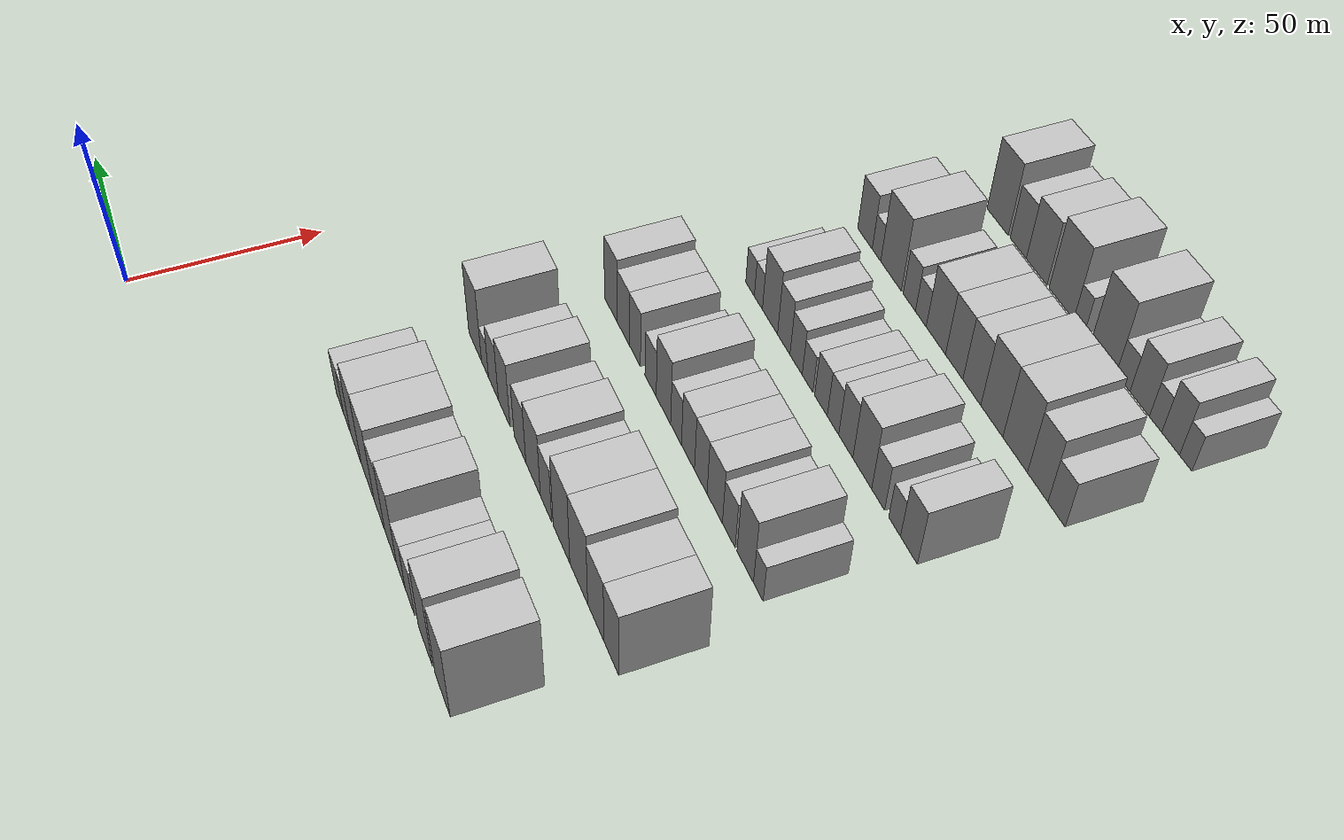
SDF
<sdf version="1.6">
 <world name="default">
  <model name="building_46">
   <static>1</static>
   <pose>50.0000 -142.6993 0 0.000000 0.000000 0.000000</pose>
   <link name="link">
    <pose>0 0 12.00 0 0 0</pose>
    <collision name="collision"><geometry><box><size>20.0000 10.8286 24.0000</size></box></geometry></collision>
    <visual name="visual">
     <cast_shadows>0</cast_shadows>
     <geometry><box><size>20.0000 10.8286 24.0000</size></box></geometry>
     <material>
      <script>
       <uri>model://HANNAS_wall/materials/scripts</uri>
       <uri>model://HANNAS_wall/materials/textures</uri>
       <name>vrc/HANNAS_wall</name>
      </script>
     </material>
    </visual>
   </link>
  </model>
  <model name="building_47">
   <static>1</static>
   <pose>50.0000 -130.2435 0 0.000000 0.000000 0.000000</pose>
   <link name="link">
    <pose>0 0 12.00 0 0 0</pose>
    <collision name="collision"><geometry><box><size>20.0000 10.0830 24.0000</size></box></geometry></collision>
    <visual name="visual">
     <cast_shadows>0</cast_shadows>
     <geometry><box><size>20.0000 10.0830 24.0000</size></box></geometry>
     <material>
      <script>
       <uri>model://HANNAS_wall/materials/scripts</uri>
       <uri>model://HANNAS_wall/materials/textures</uri>
       <name>vrc/HANNAS_wall</name>
      </script>
     </material>
    </visual>
   </link>
  </model>
  <model name="building_48">
   <static>1</static>
   <pose>50.0000 -118.5412 0 0.000000 0.000000 0.000000</pose>
   <link name="link">
    <pose>0 0 7.50 0 0 0</pose>
    <collision name="collision"><geometry><box><size>20.0000 7.3214 15.0000</size></box></geometry></collision>
    <visual name="visual">
     <cast_shadows>0</cast_shadows>
     <geometry><box><size>20.0000 7.3214 15.0000</size></box></geometry>
     <material>
      <script>
       <uri>model://HANNAS_wall/materials/scripts</uri>
       <uri>model://HANNAS_wall/materials/textures</uri>
       <name>vrc/HANNAS_wall</name>
      </script>
     </material>
    </visual>
   </link>
  </model>
  <model name="building_49">
   <static>1</static>
   <pose>50.0000 -111.5562 0 0.000000 0.000000 0.000000</pose>
   <link name="link">
    <pose>0 0 7.50 0 0 0</pose>
    <collision name="collision"><geometry><box><size>20.0000 6.6487 15.0000</size></box></geometry></collision>
    <visual name="visual">
     <cast_shadows>0</cast_shadows>
     <geometry><box><size>20.0000 6.6487 15.0000</size></box></geometry>
     <material>
      <script>
       <uri>model://HANNAS_wall/materials/scripts</uri>
       <uri>model://HANNAS_wall/materials/textures</uri>
       <name>vrc/HANNAS_wall</name>
      </script>
     </material>
    </visual>
   </link>
  </model>
  <model name="building_50">
   <static>1</static>
   <pose>50.0000 -103.3885 0 0.000000 0.000000 0.000000</pose>
   <link name="link">
    <pose>0 0 12.00 0 0 0</pose>
    <collision name="collision"><geometry><box><size>20.0000 9.6866 24.0000</size></box></geometry></collision>
    <visual name="visual">
     <cast_shadows>0</cast_shadows>
     <geometry><box><size>20.0000 9.6866 24.0000</size></box></geometry>
     <material>
      <script>
       <uri>model://HANNAS_wall/materials/scripts</uri>
       <uri>model://HANNAS_wall/materials/textures</uri>
       <name>vrc/HANNAS_wall</name>
      </script>
     </material>
    </visual>
   </link>
  </model>
  <model name="building_51">
   <static>1</static>
   <pose>50.0000 -94.0800 0 0.000000 0.000000 0.000000</pose>
   <link name="link">
    <pose>0 0 10.50 0 0 0</pose>
    <collision name="collision"><geometry><box><size>20.0000 8.9304 21.0000</size></box></geometry></collision>
    <visual name="visual">
     <cast_shadows>0</cast_shadows>
     <geometry><box><size>20.0000 8.9304 21.0000</size></box></geometry>
     <material>
      <script>
       <uri>model://HANNAS_wall/materials/scripts</uri>
       <uri>model://HANNAS_wall/materials/textures</uri>
       <name>vrc/HANNAS_wall</name>
      </script>
     </material>
    </visual>
   </link>
  </model>
  <model name="building_52">
   <static>1</static>
   <pose>50.0000 -84.0661 0 0.000000 0.000000 0.000000</pose>
   <link name="link">
    <pose>0 0 12.00 0 0 0</pose>
    <collision name="collision"><geometry><box><size>20.0000 11.0974 24.0000</size></box></geometry></collision>
    <visual name="visual">
     <cast_shadows>0</cast_shadows>
     <geometry><box><size>20.0000 11.0974 24.0000</size></box></geometry>
     <material>
      <script>
       <uri>model://HANNAS_wall/materials/scripts</uri>
       <uri>model://HANNAS_wall/materials/textures</uri>
       <name>vrc/HANNAS_wall</name>
      </script>
     </material>
    </visual>
   </link>
  </model>
  <model name="building_53">
   <static>1</static>
   <pose>50.0000 -73.6594 0 0.000000 0.000000 0.000000</pose>
   <link name="link">
    <pose>0 0 12.00 0 0 0</pose>
    <collision name="collision"><geometry><box><size>20.0000 9.7160 24.0000</size></box></geometry></collision>
    <visual name="visual">
     <cast_shadows>0</cast_shadows>
     <geometry><box><size>20.0000 9.7160 24.0000</size></box></geometry>
     <material>
      <script>
       <uri>model://HANNAS_wall/materials/scripts</uri>
       <uri>model://HANNAS_wall/materials/textures</uri>
       <name>vrc/HANNAS_wall</name>
      </script>
     </material>
    </visual>
   </link>
  </model>
  <model name="building_54">
   <static>1</static>
   <pose>50.0000 -65.4729 0 0.000000 0.000000 0.000000</pose>
   <link name="link">
    <pose>0 0 7.50 0 0 0</pose>
    <collision name="collision"><geometry><box><size>20.0000 6.6570 15.0000</size></box></geometry></collision>
    <visual name="visual">
     <cast_shadows>0</cast_shadows>
     <geometry><box><size>20.0000 6.6570 15.0000</size></box></geometry>
     <material>
      <script>
       <uri>model://HANNAS_wall/materials/scripts</uri>
       <uri>model://HANNAS_wall/materials/textures</uri>
       <name>vrc/HANNAS_wall</name>
      </script>
     </material>
    </visual>
   </link>
  </model>
  <model name="building_55">
   <static>1</static>
   <pose>50.0000 -58.6937 0 0.000000 0.000000 0.000000</pose>
   <link name="link">
    <pose>0 0 7.50 0 0 0</pose>
    <collision name="collision"><geometry><box><size>20.0000 6.9015 15.0000</size></box></geometry></collision>
    <visual name="visual">
     <cast_shadows>0</cast_shadows>
     <geometry><box><size>20.0000 6.9015 15.0000</size></box></geometry>
     <material>
      <script>
       <uri>model://HANNAS_wall/materials/scripts</uri>
       <uri>model://HANNAS_wall/materials/textures</uri>
       <name>vrc/HANNAS_wall</name>
      </script>
     </material>
    </visual>
   </link>
  </model>
  <model name="building_178">
   <static>1</static>
   <pose>85.0000 -146.7550 0 0.000000 0.000000 0.000000</pose>
   <link name="link">
    <pose>0 0 10.50 0 0 0</pose>
    <collision name="collision"><geometry><box><size>20.0000 8.6500 21.0000</size></box></geometry></collision>
    <visual name="visual">
     <cast_shadows>0</cast_shadows>
     <geometry><box><size>20.0000 8.6500 21.0000</size></box></geometry>
     <material>
      <script>
       <uri>model://HANNAS_wall/materials/scripts</uri>
       <uri>model://HANNAS_wall/materials/textures</uri>
       <name>vrc/HANNAS_wall</name>
      </script>
     </material>
    </visual>
   </link>
  </model>
  <model name="building_179">
   <static>1</static>
   <pose>85.0000 -137.4361 0 0.000000 0.000000 0.000000</pose>
   <link name="link">
    <pose>0 0 10.50 0 0 0</pose>
    <collision name="collision"><geometry><box><size>20.0000 9.9879 21.0000</size></box></geometry></collision>
    <visual name="visual">
     <cast_shadows>0</cast_shadows>
     <geometry><box><size>20.0000 9.9879 21.0000</size></box></geometry>
     <material>
      <script>
       <uri>model://HANNAS_wall/materials/scripts</uri>
       <uri>model://HANNAS_wall/materials/textures</uri>
       <name>vrc/HANNAS_wall</name>
      </script>
     </material>
    </visual>
   </link>
  </model>
  <model name="building_180">
   <static>1</static>
   <pose>85.0000 -126.7914 0 0.000000 0.000000 0.000000</pose>
   <link name="link">
    <pose>0 0 12.00 0 0 0</pose>
    <collision name="collision"><geometry><box><size>20.0000 11.3013 24.0000</size></box></geometry></collision>
    <visual name="visual">
     <cast_shadows>0</cast_shadows>
     <geometry><box><size>20.0000 11.3013 24.0000</size></box></geometry>
     <material>
      <script>
       <uri>model://HANNAS_wall/materials/scripts</uri>
       <uri>model://HANNAS_wall/materials/textures</uri>
       <name>vrc/HANNAS_wall</name>
      </script>
     </material>
    </visual>
   </link>
  </model>
  <model name="building_181">
   <static>1</static>
   <pose>85.0000 -115.6757 0 0.000000 0.000000 0.000000</pose>
   <link name="link">
    <pose>0 0 12.00 0 0 0</pose>
    <collision name="collision"><geometry><box><size>20.0000 10.9302 24.0000</size></box></geometry></collision>
    <visual name="visual">
     <cast_shadows>0</cast_shadows>
     <geometry><box><size>20.0000 10.9302 24.0000</size></box></geometry>
     <material>
      <script>
       <uri>model://HANNAS_wall/materials/scripts</uri>
       <uri>model://HANNAS_wall/materials/textures</uri>
       <name>vrc/HANNAS_wall</name>
      </script>
     </material>
    </visual>
   </link>
  </model>
  <model name="building_182">
   <static>1</static>
   <pose>85.0000 -105.3708 0 0.000000 0.000000 0.000000</pose>
   <link name="link">
    <pose>0 0 9.00 0 0 0</pose>
    <collision name="collision"><geometry><box><size>20.0000 7.6794 18.0000</size></box></geometry></collision>
    <visual name="visual">
     <cast_shadows>0</cast_shadows>
     <geometry><box><size>20.0000 7.6794 18.0000</size></box></geometry>
     <material>
      <script>
       <uri>model://HANNAS_wall/materials/scripts</uri>
       <uri>model://HANNAS_wall/materials/textures</uri>
       <name>vrc/HANNAS_wall</name>
      </script>
     </material>
    </visual>
   </link>
  </model>
  <model name="building_183">
   <static>1</static>
   <pose>85.0000 -96.4211 0 0.000000 0.000000 0.000000</pose>
   <link name="link">
    <pose>0 0 10.50 0 0 0</pose>
    <collision name="collision"><geometry><box><size>20.0000 10.2200 21.0000</size></box></geometry></collision>
    <visual name="visual">
     <cast_shadows>0</cast_shadows>
     <geometry><box><size>20.0000 10.2200 21.0000</size></box></geometry>
     <material>
      <script>
       <uri>model://HANNAS_wall/materials/scripts</uri>
       <uri>model://HANNAS_wall/materials/textures</uri>
       <name>vrc/HANNAS_wall</name>
      </script>
     </material>
    </visual>
   </link>
  </model>
  <model name="building_184">
   <static>1</static>
   <pose>85.0000 -87.0739 0 0.000000 0.000000 0.000000</pose>
   <link name="link">
    <pose>0 0 9.00 0 0 0</pose>
    <collision name="collision"><geometry><box><size>20.0000 8.4744 18.0000</size></box></geometry></collision>
    <visual name="visual">
     <cast_shadows>0</cast_shadows>
     <geometry><box><size>20.0000 8.4744 18.0000</size></box></geometry>
     <material>
      <script>
       <uri>model://HANNAS_wall/materials/scripts</uri>
       <uri>model://HANNAS_wall/materials/textures</uri>
       <name>vrc/HANNAS_wall</name>
      </script>
     </material>
    </visual>
   </link>
  </model>
  <model name="building_185">
   <static>1</static>
   <pose>85.0000 -75.4561 0 0.000000 0.000000 0.000000</pose>
   <link name="link">
    <pose>0 0 10.50 0 0 0</pose>
    <collision name="collision"><geometry><box><size>20.0000 8.7612 21.0000</size></box></geometry></collision>
    <visual name="visual">
     <cast_shadows>0</cast_shadows>
     <geometry><box><size>20.0000 8.7612 21.0000</size></box></geometry>
     <material>
      <script>
       <uri>model://HANNAS_wall/materials/scripts</uri>
       <uri>model://HANNAS_wall/materials/textures</uri>
       <name>vrc/HANNAS_wall</name>
      </script>
     </material>
    </visual>
   </link>
  </model>
  <model name="building_186">
   <static>1</static>
   <pose>85.0000 -67.2510 0 0.000000 0.000000 0.000000</pose>
   <link name="link">
    <pose>0 0 9.00 0 0 0</pose>
    <collision name="collision"><geometry><box><size>20.0000 7.6490 18.0000</size></box></geometry></collision>
    <visual name="visual">
     <cast_shadows>0</cast_shadows>
     <geometry><box><size>20.0000 7.6490 18.0000</size></box></geometry>
     <material>
      <script>
       <uri>model://HANNAS_wall/materials/scripts</uri>
       <uri>model://HANNAS_wall/materials/textures</uri>
       <name>vrc/HANNAS_wall</name>
      </script>
     </material>
    </visual>
   </link>
  </model>
  <model name="building_187">
   <static>1</static>
   <pose>85.0000 -60.6547 0 0.000000 0.000000 0.000000</pose>
   <link name="link">
    <pose>0 0 6.00 0 0 0</pose>
    <collision name="collision"><geometry><box><size>20.0000 5.5435 12.0000</size></box></geometry></collision>
    <visual name="visual">
     <cast_shadows>0</cast_shadows>
     <geometry><box><size>20.0000 5.5435 12.0000</size></box></geometry>
     <material>
      <script>
       <uri>model://HANNAS_wall/materials/scripts</uri>
       <uri>model://HANNAS_wall/materials/textures</uri>
       <name>vrc/HANNAS_wall</name>
      </script>
     </material>
    </visual>
   </link>
  </model>
  <model name="building_188">
   <static>1</static>
   <pose>85.0000 -52.8168 0 0.000000 0.000000 0.000000</pose>
   <link name="link">
    <pose>0 0 12.00 0 0 0</pose>
    <collision name="collision"><geometry><box><size>20.0000 10.1323 24.0000</size></box></geometry></collision>
    <visual name="visual">
     <cast_shadows>0</cast_shadows>
     <geometry><box><size>20.0000 10.1323 24.0000</size></box></geometry>
     <material>
      <script>
       <uri>model://HANNAS_wall/materials/scripts</uri>
       <uri>model://HANNAS_wall/materials/textures</uri>
       <name>vrc/HANNAS_wall</name>
      </script>
     </material>
    </visual>
   </link>
  </model>
  <model name="building_299">
   <static>1</static>
   <pose>120.0000 -142.3648 0 0.000000 0.000000 0.000000</pose>
   <link name="link">
    <pose>0 0 6.00 0 0 0</pose>
    <collision name="collision"><geometry><box><size>20.0000 5.1051 12.0000</size></box></geometry></collision>
    <visual name="visual">
     <cast_shadows>0</cast_shadows>
     <geometry><box><size>20.0000 5.1051 12.0000</size></box></geometry>
     <material>
      <script>
       <uri>model://HANNAS_wall/materials/scripts</uri>
       <uri>model://HANNAS_wall/materials/textures</uri>
       <name>vrc/HANNAS_wall</name>
      </script>
     </material>
    </visual>
   </link>
  </model>
  <model name="building_300">
   <static>1</static>
   <pose>120.0000 -135.4000 0 0.000000 0.000000 0.000000</pose>
   <link name="link">
    <pose>0 0 10.50 0 0 0</pose>
    <collision name="collision"><geometry><box><size>20.0000 8.8246 21.0000</size></box></geometry></collision>
    <visual name="visual">
     <cast_shadows>0</cast_shadows>
     <geometry><box><size>20.0000 8.8246 21.0000</size></box></geometry>
     <material>
      <script>
       <uri>model://HANNAS_wall/materials/scripts</uri>
       <uri>model://HANNAS_wall/materials/textures</uri>
       <name>vrc/HANNAS_wall</name>
      </script>
     </material>
    </visual>
   </link>
  </model>
  <model name="building_301">
   <static>1</static>
   <pose>120.0000 -126.4587 0 0.000000 0.000000 0.000000</pose>
   <link name="link">
    <pose>0 0 7.50 0 0 0</pose>
    <collision name="collision"><geometry><box><size>20.0000 7.0579 15.0000</size></box></geometry></collision>
    <visual name="visual">
     <cast_shadows>0</cast_shadows>
     <geometry><box><size>20.0000 7.0579 15.0000</size></box></geometry>
     <material>
      <script>
       <uri>model://HANNAS_wall/materials/scripts</uri>
       <uri>model://HANNAS_wall/materials/textures</uri>
       <name>vrc/HANNAS_wall</name>
      </script>
     </material>
    </visual>
   </link>
  </model>
  <model name="building_302">
   <static>1</static>
   <pose>120.0000 -118.5401 0 0.000000 0.000000 0.000000</pose>
   <link name="link">
    <pose>0 0 9.00 0 0 0</pose>
    <collision name="collision"><geometry><box><size>20.0000 8.7794 18.0000</size></box></geometry></collision>
    <visual name="visual">
     <cast_shadows>0</cast_shadows>
     <geometry><box><size>20.0000 8.7794 18.0000</size></box></geometry>
     <material>
      <script>
       <uri>model://HANNAS_wall/materials/scripts</uri>
       <uri>model://HANNAS_wall/materials/textures</uri>
       <name>vrc/HANNAS_wall</name>
      </script>
     </material>
    </visual>
   </link>
  </model>
  <model name="building_303">
   <static>1</static>
   <pose>120.0000 -110.4561 0 0.000000 0.000000 0.000000</pose>
   <link name="link">
    <pose>0 0 9.00 0 0 0</pose>
    <collision name="collision"><geometry><box><size>20.0000 7.3886 18.0000</size></box></geometry></collision>
    <visual name="visual">
     <cast_shadows>0</cast_shadows>
     <geometry><box><size>20.0000 7.3886 18.0000</size></box></geometry>
     <material>
      <script>
       <uri>model://HANNAS_wall/materials/scripts</uri>
       <uri>model://HANNAS_wall/materials/textures</uri>
       <name>vrc/HANNAS_wall</name>
      </script>
     </material>
    </visual>
   </link>
  </model>
  <model name="building_304">
   <static>1</static>
   <pose>120.0000 -102.8516 0 0.000000 0.000000 0.000000</pose>
   <link name="link">
    <pose>0 0 9.00 0 0 0</pose>
    <collision name="collision"><geometry><box><size>20.0000 7.8203 18.0000</size></box></geometry></collision>
    <visual name="visual">
     <cast_shadows>0</cast_shadows>
     <geometry><box><size>20.0000 7.8203 18.0000</size></box></geometry>
     <material>
      <script>
       <uri>model://HANNAS_wall/materials/scripts</uri>
       <uri>model://HANNAS_wall/materials/textures</uri>
       <name>vrc/HANNAS_wall</name>
      </script>
     </material>
    </visual>
   </link>
  </model>
  <model name="building_305">
   <static>1</static>
   <pose>120.0000 -95.6163 0 0.000000 0.000000 0.000000</pose>
   <link name="link">
    <pose>0 0 7.50 0 0 0</pose>
    <collision name="collision"><geometry><box><size>20.0000 6.6504 15.0000</size></box></geometry></collision>
    <visual name="visual">
     <cast_shadows>0</cast_shadows>
     <geometry><box><size>20.0000 6.6504 15.0000</size></box></geometry>
     <material>
      <script>
       <uri>model://HANNAS_wall/materials/scripts</uri>
       <uri>model://HANNAS_wall/materials/textures</uri>
       <name>vrc/HANNAS_wall</name>
      </script>
     </material>
    </visual>
   </link>
  </model>
  <model name="building_306">
   <static>1</static>
   <pose>120.0000 -87.7438 0 0.000000 0.000000 0.000000</pose>
   <link name="link">
    <pose>0 0 10.50 0 0 0</pose>
    <collision name="collision"><geometry><box><size>20.0000 9.0945 21.0000</size></box></geometry></collision>
    <visual name="visual">
     <cast_shadows>0</cast_shadows>
     <geometry><box><size>20.0000 9.0945 21.0000</size></box></geometry>
     <material>
      <script>
       <uri>model://HANNAS_wall/materials/scripts</uri>
       <uri>model://HANNAS_wall/materials/textures</uri>
       <name>vrc/HANNAS_wall</name>
      </script>
     </material>
    </visual>
   </link>
  </model>
  <model name="building_307">
   <static>1</static>
   <pose>120.0000 -79.5522 0 0.000000 0.000000 0.000000</pose>
   <link name="link">
    <pose>0 0 7.50 0 0 0</pose>
    <collision name="collision"><geometry><box><size>20.0000 7.2886 15.0000</size></box></geometry></collision>
    <visual name="visual">
     <cast_shadows>0</cast_shadows>
     <geometry><box><size>20.0000 7.2886 15.0000</size></box></geometry>
     <material>
      <script>
       <uri>model://HANNAS_wall/materials/scripts</uri>
       <uri>model://HANNAS_wall/materials/textures</uri>
       <name>vrc/HANNAS_wall</name>
      </script>
     </material>
    </visual>
   </link>
  </model>
  <model name="building_308">
   <static>1</static>
   <pose>120.0000 -69.1373 0 0.000000 0.000000 0.000000</pose>
   <link name="link">
    <pose>0 0 9.00 0 0 0</pose>
    <collision name="collision"><geometry><box><size>20.0000 7.5412 18.0000</size></box></geometry></collision>
    <visual name="visual">
     <cast_shadows>0</cast_shadows>
     <geometry><box><size>20.0000 7.5412 18.0000</size></box></geometry>
     <material>
      <script>
       <uri>model://HANNAS_wall/materials/scripts</uri>
       <uri>model://HANNAS_wall/materials/textures</uri>
       <name>vrc/HANNAS_wall</name>
      </script>
     </material>
    </visual>
   </link>
  </model>
  <model name="building_309">
   <static>1</static>
   <pose>120.0000 -61.3395 0 0.000000 0.000000 0.000000</pose>
   <link name="link">
    <pose>0 0 9.00 0 0 0</pose>
    <collision name="collision"><geometry><box><size>20.0000 8.0544 18.0000</size></box></geometry></collision>
    <visual name="visual">
     <cast_shadows>0</cast_shadows>
     <geometry><box><size>20.0000 8.0544 18.0000</size></box></geometry>
     <material>
      <script>
       <uri>model://HANNAS_wall/materials/scripts</uri>
       <uri>model://HANNAS_wall/materials/textures</uri>
       <name>vrc/HANNAS_wall</name>
      </script>
     </material>
    </visual>
   </link>
  </model>
  <model name="building_310">
   <static>1</static>
   <pose>120.0000 -52.8028 0 0.000000 0.000000 0.000000</pose>
   <link name="link">
    <pose>0 0 10.50 0 0 0</pose>
    <collision name="collision"><geometry><box><size>20.0000 9.0190 21.0000</size></box></geometry></collision>
    <visual name="visual">
     <cast_shadows>0</cast_shadows>
     <geometry><box><size>20.0000 9.0190 21.0000</size></box></geometry>
     <material>
      <script>
       <uri>model://HANNAS_wall/materials/scripts</uri>
       <uri>model://HANNAS_wall/materials/textures</uri>
       <name>vrc/HANNAS_wall</name>
      </script>
     </material>
    </visual>
   </link>
  </model>
  <model name="building_427">
   <static>1</static>
   <pose>155.0000 -144.0502 0 0.000000 0.000000 0.000000</pose>
   <link name="link">
    <pose>0 0 9.00 0 0 0</pose>
    <collision name="collision"><geometry><box><size>20.0000 7.9518 18.0000</size></box></geometry></collision>
    <visual name="visual">
     <cast_shadows>0</cast_shadows>
     <geometry><box><size>20.0000 7.9518 18.0000</size></box></geometry>
     <material>
      <script>
       <uri>model://HANNAS_wall/materials/scripts</uri>
       <uri>model://HANNAS_wall/materials/textures</uri>
       <name>vrc/HANNAS_wall</name>
      </script>
     </material>
    </visual>
   </link>
  </model>
  <model name="building_428">
   <static>1</static>
   <pose>155.0000 -137.2427 0 0.000000 0.000000 0.000000</pose>
   <link name="link">
    <pose>0 0 6.00 0 0 0</pose>
    <collision name="collision"><geometry><box><size>20.0000 5.6633 12.0000</size></box></geometry></collision>
    <visual name="visual">
     <cast_shadows>0</cast_shadows>
     <geometry><box><size>20.0000 5.6633 12.0000</size></box></geometry>
     <material>
      <script>
       <uri>model://HANNAS_wall/materials/scripts</uri>
       <uri>model://HANNAS_wall/materials/textures</uri>
       <name>vrc/HANNAS_wall</name>
      </script>
     </material>
    </visual>
   </link>
  </model>
  <model name="building_429">
   <static>1</static>
   <pose>155.0000 -129.2207 0 0.000000 0.000000 0.000000</pose>
   <link name="link">
    <pose>0 0 7.50 0 0 0</pose>
    <collision name="collision"><geometry><box><size>20.0000 6.3806 15.0000</size></box></geometry></collision>
    <visual name="visual">
     <cast_shadows>0</cast_shadows>
     <geometry><box><size>20.0000 6.3806 15.0000</size></box></geometry>
     <material>
      <script>
       <uri>model://HANNAS_wall/materials/scripts</uri>
       <uri>model://HANNAS_wall/materials/textures</uri>
       <name>vrc/HANNAS_wall</name>
      </script>
     </material>
    </visual>
   </link>
  </model>
  <model name="building_430">
   <static>1</static>
   <pose>155.0000 -121.2446 0 0.000000 0.000000 0.000000</pose>
   <link name="link">
    <pose>0 0 10.50 0 0 0</pose>
    <collision name="collision"><geometry><box><size>20.0000 9.5715 21.0000</size></box></geometry></collision>
    <visual name="visual">
     <cast_shadows>0</cast_shadows>
     <geometry><box><size>20.0000 9.5715 21.0000</size></box></geometry>
     <material>
      <script>
       <uri>model://HANNAS_wall/materials/scripts</uri>
       <uri>model://HANNAS_wall/materials/textures</uri>
       <name>vrc/HANNAS_wall</name>
      </script>
     </material>
    </visual>
   </link>
  </model>
  <model name="building_431">
   <static>1</static>
   <pose>155.0000 -112.7511 0 0.000000 0.000000 0.000000</pose>
   <link name="link">
    <pose>0 0 9.00 0 0 0</pose>
    <collision name="collision"><geometry><box><size>20.0000 7.4154 18.0000</size></box></geometry></collision>
    <visual name="visual">
     <cast_shadows>0</cast_shadows>
     <geometry><box><size>20.0000 7.4154 18.0000</size></box></geometry>
     <material>
      <script>
       <uri>model://HANNAS_wall/materials/scripts</uri>
       <uri>model://HANNAS_wall/materials/textures</uri>
       <name>vrc/HANNAS_wall</name>
      </script>
     </material>
    </visual>
   </link>
  </model>
  <model name="building_432">
   <static>1</static>
   <pose>155.0000 -105.9894 0 0.000000 0.000000 0.000000</pose>
   <link name="link">
    <pose>0 0 7.50 0 0 0</pose>
    <collision name="collision"><geometry><box><size>20.0000 6.1082 15.0000</size></box></geometry></collision>
    <visual name="visual">
     <cast_shadows>0</cast_shadows>
     <geometry><box><size>20.0000 6.1082 15.0000</size></box></geometry>
     <material>
      <script>
       <uri>model://HANNAS_wall/materials/scripts</uri>
       <uri>model://HANNAS_wall/materials/textures</uri>
       <name>vrc/HANNAS_wall</name>
      </script>
     </material>
    </visual>
   </link>
  </model>
  <model name="building_433">
   <static>1</static>
   <pose>155.0000 -99.5050 0 0.000000 0.000000 0.000000</pose>
   <link name="link">
    <pose>0 0 7.50 0 0 0</pose>
    <collision name="collision"><geometry><box><size>20.0000 6.8606 15.0000</size></box></geometry></collision>
    <visual name="visual">
     <cast_shadows>0</cast_shadows>
     <geometry><box><size>20.0000 6.8606 15.0000</size></box></geometry>
     <material>
      <script>
       <uri>model://HANNAS_wall/materials/scripts</uri>
       <uri>model://HANNAS_wall/materials/textures</uri>
       <name>vrc/HANNAS_wall</name>
      </script>
     </material>
    </visual>
   </link>
  </model>
  <model name="building_434">
   <static>1</static>
   <pose>155.0000 -92.1052 0 0.000000 0.000000 0.000000</pose>
   <link name="link">
    <pose>0 0 6.00 0 0 0</pose>
    <collision name="collision"><geometry><box><size>20.0000 5.9390 12.0000</size></box></geometry></collision>
    <visual name="visual">
     <cast_shadows>0</cast_shadows>
     <geometry><box><size>20.0000 5.9390 12.0000</size></box></geometry>
     <material>
      <script>
       <uri>model://HANNAS_wall/materials/scripts</uri>
       <uri>model://HANNAS_wall/materials/textures</uri>
       <name>vrc/HANNAS_wall</name>
      </script>
     </material>
    </visual>
   </link>
  </model>
  <model name="building_435">
   <static>1</static>
   <pose>155.0000 -85.6415 0 0.000000 0.000000 0.000000</pose>
   <link name="link">
    <pose>0 0 7.50 0 0 0</pose>
    <collision name="collision"><geometry><box><size>20.0000 6.9885 15.0000</size></box></geometry></collision>
    <visual name="visual">
     <cast_shadows>0</cast_shadows>
     <geometry><box><size>20.0000 6.9885 15.0000</size></box></geometry>
     <material>
      <script>
       <uri>model://HANNAS_wall/materials/scripts</uri>
       <uri>model://HANNAS_wall/materials/textures</uri>
       <name>vrc/HANNAS_wall</name>
      </script>
     </material>
    </visual>
   </link>
  </model>
  <model name="building_436">
   <static>1</static>
   <pose>155.0000 -78.5261 0 0.000000 0.000000 0.000000</pose>
   <link name="link">
    <pose>0 0 9.00 0 0 0</pose>
    <collision name="collision"><geometry><box><size>20.0000 7.2423 18.0000</size></box></geometry></collision>
    <visual name="visual">
     <cast_shadows>0</cast_shadows>
     <geometry><box><size>20.0000 7.2423 18.0000</size></box></geometry>
     <material>
      <script>
       <uri>model://HANNAS_wall/materials/scripts</uri>
       <uri>model://HANNAS_wall/materials/textures</uri>
       <name>vrc/HANNAS_wall</name>
      </script>
     </material>
    </visual>
   </link>
  </model>
  <model name="building_437">
   <static>1</static>
   <pose>155.0000 -70.3965 0 0.000000 0.000000 0.000000</pose>
   <link name="link">
    <pose>0 0 10.50 0 0 0</pose>
    <collision name="collision"><geometry><box><size>20.0000 9.0168 21.0000</size></box></geometry></collision>
    <visual name="visual">
     <cast_shadows>0</cast_shadows>
     <geometry><box><size>20.0000 9.0168 21.0000</size></box></geometry>
     <material>
      <script>
       <uri>model://HANNAS_wall/materials/scripts</uri>
       <uri>model://HANNAS_wall/materials/textures</uri>
       <name>vrc/HANNAS_wall</name>
      </script>
     </material>
    </visual>
   </link>
  </model>
  <model name="building_438">
   <static>1</static>
   <pose>155.0000 -63.4257 0 0.000000 0.000000 0.000000</pose>
   <link name="link">
    <pose>0 0 6.00 0 0 0</pose>
    <collision name="collision"><geometry><box><size>20.0000 4.9248 12.0000</size></box></geometry></collision>
    <visual name="visual">
     <cast_shadows>0</cast_shadows>
     <geometry><box><size>20.0000 4.9248 12.0000</size></box></geometry>
     <material>
      <script>
       <uri>model://HANNAS_wall/materials/scripts</uri>
       <uri>model://HANNAS_wall/materials/textures</uri>
       <name>vrc/HANNAS_wall</name>
      </script>
     </material>
    </visual>
   </link>
  </model>
  <model name="building_439">
   <static>1</static>
   <pose>155.0000 -58.3065 0 0.000000 0.000000 0.000000</pose>
   <link name="link">
    <pose>0 0 6.00 0 0 0</pose>
    <collision name="collision"><geometry><box><size>20.0000 5.3138 12.0000</size></box></geometry></collision>
    <visual name="visual">
     <cast_shadows>0</cast_shadows>
     <geometry><box><size>20.0000 5.3138 12.0000</size></box></geometry>
     <material>
      <script>
       <uri>model://HANNAS_wall/materials/scripts</uri>
       <uri>model://HANNAS_wall/materials/textures</uri>
       <name>vrc/HANNAS_wall</name>
      </script>
     </material>
    </visual>
   </link>
  </model>
  <model name="building_564">
   <static>1</static>
   <pose>190.0000 -146.9548 0 0.000000 0.000000 0.000000</pose>
   <link name="link">
    <pose>0 0 7.50 0 0 0</pose>
    <collision name="collision"><geometry><box><size>20.0000 7.3319 15.0000</size></box></geometry></collision>
    <visual name="visual">
     <cast_shadows>0</cast_shadows>
     <geometry><box><size>20.0000 7.3319 15.0000</size></box></geometry>
     <material>
      <script>
       <uri>model://HANNAS_wall/materials/scripts</uri>
       <uri>model://HANNAS_wall/materials/textures</uri>
       <name>vrc/HANNAS_wall</name>
      </script>
     </material>
    </visual>
   </link>
  </model>
  <model name="building_565">
   <static>1</static>
   <pose>190.0000 -138.7970 0 0.000000 0.000000 0.000000</pose>
   <link name="link">
    <pose>0 0 10.50 0 0 0</pose>
    <collision name="collision"><geometry><box><size>20.0000 8.9836 21.0000</size></box></geometry></collision>
    <visual name="visual">
     <cast_shadows>0</cast_shadows>
     <geometry><box><size>20.0000 8.9836 21.0000</size></box></geometry>
     <material>
      <script>
       <uri>model://HANNAS_wall/materials/scripts</uri>
       <uri>model://HANNAS_wall/materials/textures</uri>
       <name>vrc/HANNAS_wall</name>
      </script>
     </material>
    </visual>
   </link>
  </model>
  <model name="building_566">
   <static>1</static>
   <pose>190.0000 -128.7266 0 0.000000 0.000000 0.000000</pose>
   <link name="link">
    <pose>0 0 12.00 0 0 0</pose>
    <collision name="collision"><geometry><box><size>20.0000 11.1574 24.0000</size></box></geometry></collision>
    <visual name="visual">
     <cast_shadows>0</cast_shadows>
     <geometry><box><size>20.0000 11.1574 24.0000</size></box></geometry>
     <material>
      <script>
       <uri>model://HANNAS_wall/materials/scripts</uri>
       <uri>model://HANNAS_wall/materials/textures</uri>
       <name>vrc/HANNAS_wall</name>
      </script>
     </material>
    </visual>
   </link>
  </model>
  <model name="building_567">
   <static>1</static>
   <pose>190.0000 -117.9526 0 0.000000 0.000000 0.000000</pose>
   <link name="link">
    <pose>0 0 12.00 0 0 0</pose>
    <collision name="collision"><geometry><box><size>20.0000 10.3905 24.0000</size></box></geometry></collision>
    <visual name="visual">
     <cast_shadows>0</cast_shadows>
     <geometry><box><size>20.0000 10.3905 24.0000</size></box></geometry>
     <material>
      <script>
       <uri>model://HANNAS_wall/materials/scripts</uri>
       <uri>model://HANNAS_wall/materials/textures</uri>
       <name>vrc/HANNAS_wall</name>
      </script>
     </material>
    </visual>
   </link>
  </model>
  <model name="building_568">
   <static>1</static>
   <pose>190.0000 -108.4082 0 0.000000 0.000000 0.000000</pose>
   <link name="link">
    <pose>0 0 10.50 0 0 0</pose>
    <collision name="collision"><geometry><box><size>20.0000 8.6984 21.0000</size></box></geometry></collision>
    <visual name="visual">
     <cast_shadows>0</cast_shadows>
     <geometry><box><size>20.0000 8.6984 21.0000</size></box></geometry>
     <material>
      <script>
       <uri>model://HANNAS_wall/materials/scripts</uri>
       <uri>model://HANNAS_wall/materials/textures</uri>
       <name>vrc/HANNAS_wall</name>
      </script>
     </material>
    </visual>
   </link>
  </model>
  <model name="building_569">
   <static>1</static>
   <pose>190.0000 -99.7356 0 0.000000 0.000000 0.000000</pose>
   <link name="link">
    <pose>0 0 10.50 0 0 0</pose>
    <collision name="collision"><geometry><box><size>20.0000 8.6468 21.0000</size></box></geometry></collision>
    <visual name="visual">
     <cast_shadows>0</cast_shadows>
     <geometry><box><size>20.0000 8.6468 21.0000</size></box></geometry>
     <material>
      <script>
       <uri>model://HANNAS_wall/materials/scripts</uri>
       <uri>model://HANNAS_wall/materials/textures</uri>
       <name>vrc/HANNAS_wall</name>
      </script>
     </material>
    </visual>
   </link>
  </model>
  <model name="building_570">
   <static>1</static>
   <pose>190.0000 -90.4757 0 0.000000 0.000000 0.000000</pose>
   <link name="link">
    <pose>0 0 10.50 0 0 0</pose>
    <collision name="collision"><geometry><box><size>20.0000 9.8730 21.0000</size></box></geometry></collision>
    <visual name="visual">
     <cast_shadows>0</cast_shadows>
     <geometry><box><size>20.0000 9.8730 21.0000</size></box></geometry>
     <material>
      <script>
       <uri>model://HANNAS_wall/materials/scripts</uri>
       <uri>model://HANNAS_wall/materials/textures</uri>
       <name>vrc/HANNAS_wall</name>
      </script>
     </material>
    </visual>
   </link>
  </model>
  <model name="building_571">
   <static>1</static>
   <pose>190.0000 -82.7062 0 0.000000 0.000000 0.000000</pose>
   <link name="link">
    <pose>0 0 6.00 0 0 0</pose>
    <collision name="collision"><geometry><box><size>20.0000 5.6659 12.0000</size></box></geometry></collision>
    <visual name="visual">
     <cast_shadows>0</cast_shadows>
     <geometry><box><size>20.0000 5.6659 12.0000</size></box></geometry>
     <material>
      <script>
       <uri>model://HANNAS_wall/materials/scripts</uri>
       <uri>model://HANNAS_wall/materials/textures</uri>
       <name>vrc/HANNAS_wall</name>
      </script>
     </material>
    </visual>
   </link>
  </model>
  <model name="building_572">
   <static>1</static>
   <pose>190.0000 -76.5878 0 0.000000 0.000000 0.000000</pose>
   <link name="link">
    <pose>0 0 7.50 0 0 0</pose>
    <collision name="collision"><geometry><box><size>20.0000 6.5710 15.0000</size></box></geometry></collision>
    <visual name="visual">
     <cast_shadows>0</cast_shadows>
     <geometry><box><size>20.0000 6.5710 15.0000</size></box></geometry>
     <material>
      <script>
       <uri>model://HANNAS_wall/materials/scripts</uri>
       <uri>model://HANNAS_wall/materials/textures</uri>
       <name>vrc/HANNAS_wall</name>
      </script>
     </material>
    </visual>
   </link>
  </model>
  <model name="building_573">
   <static>1</static>
   <pose>190.0000 -66.6164 0 0.000000 0.000000 0.000000</pose>
   <link name="link">
    <pose>0 0 12.00 0 0 0</pose>
    <collision name="collision"><geometry><box><size>20.0000 11.3718 24.0000</size></box></geometry></collision>
    <visual name="visual">
     <cast_shadows>0</cast_shadows>
     <geometry><box><size>20.0000 11.3718 24.0000</size></box></geometry>
     <material>
      <script>
       <uri>model://HANNAS_wall/materials/scripts</uri>
       <uri>model://HANNAS_wall/materials/textures</uri>
       <name>vrc/HANNAS_wall</name>
      </script>
     </material>
    </visual>
   </link>
  </model>
  <model name="building_574">
   <static>1</static>
   <pose>190.0000 -58.5263 0 0.000000 0.000000 0.000000</pose>
   <link name="link">
    <pose>0 0 6.00 0 0 0</pose>
    <collision name="collision"><geometry><box><size>20.0000 4.8086 12.0000</size></box></geometry></collision>
    <visual name="visual">
     <cast_shadows>0</cast_shadows>
     <geometry><box><size>20.0000 4.8086 12.0000</size></box></geometry>
     <material>
      <script>
       <uri>model://HANNAS_wall/materials/scripts</uri>
       <uri>model://HANNAS_wall/materials/textures</uri>
       <name>vrc/HANNAS_wall</name>
      </script>
     </material>
    </visual>
   </link>
  </model>
  <model name="building_575">
   <static>1</static>
   <pose>190.0000 -51.9500 0 0.000000 0.000000 0.000000</pose>
   <link name="link">
    <pose>0 0 9.00 0 0 0</pose>
    <collision name="collision"><geometry><box><size>20.0000 8.3439 18.0000</size></box></geometry></collision>
    <visual name="visual">
     <cast_shadows>0</cast_shadows>
     <geometry><box><size>20.0000 8.3439 18.0000</size></box></geometry>
     <material>
      <script>
       <uri>model://HANNAS_wall/materials/scripts</uri>
       <uri>model://HANNAS_wall/materials/textures</uri>
       <name>vrc/HANNAS_wall</name>
      </script>
     </material>
    </visual>
   </link>
  </model>
  <model name="building_686">
   <static>1</static>
   <pose>225.0000 -144.6628 0 0.000000 0.000000 0.000000</pose>
   <link name="link">
    <pose>0 0 6.00 0 0 0</pose>
    <collision name="collision"><geometry><box><size>20.0000 4.9971 12.0000</size></box></geometry></collision>
    <visual name="visual">
     <cast_shadows>0</cast_shadows>
     <geometry><box><size>20.0000 4.9971 12.0000</size></box></geometry>
     <material>
      <script>
       <uri>model://HANNAS_wall/materials/scripts</uri>
       <uri>model://HANNAS_wall/materials/textures</uri>
       <name>vrc/HANNAS_wall</name>
      </script>
     </material>
    </visual>
   </link>
  </model>
  <model name="building_687">
   <static>1</static>
   <pose>225.0000 -138.5360 0 0.000000 0.000000 0.000000</pose>
   <link name="link">
    <pose>0 0 9.00 0 0 0</pose>
    <collision name="collision"><geometry><box><size>20.0000 7.2565 18.0000</size></box></geometry></collision>
    <visual name="visual">
     <cast_shadows>0</cast_shadows>
     <geometry><box><size>20.0000 7.2565 18.0000</size></box></geometry>
     <material>
      <script>
       <uri>model://HANNAS_wall/materials/scripts</uri>
       <uri>model://HANNAS_wall/materials/textures</uri>
       <name>vrc/HANNAS_wall</name>
      </script>
     </material>
    </visual>
   </link>
  </model>
  <model name="building_688">
   <static>1</static>
   <pose>225.0000 -132.3315 0 0.000000 0.000000 0.000000</pose>
   <link name="link">
    <pose>0 0 6.00 0 0 0</pose>
    <collision name="collision"><geometry><box><size>20.0000 5.1525 12.0000</size></box></geometry></collision>
    <visual name="visual">
     <cast_shadows>0</cast_shadows>
     <geometry><box><size>20.0000 5.1525 12.0000</size></box></geometry>
     <material>
      <script>
       <uri>model://HANNAS_wall/materials/scripts</uri>
       <uri>model://HANNAS_wall/materials/textures</uri>
       <name>vrc/HANNAS_wall</name>
      </script>
     </material>
    </visual>
   </link>
  </model>
  <model name="building_689">
   <static>1</static>
   <pose>225.0000 -125.6028 0 0.000000 0.000000 0.000000</pose>
   <link name="link">
    <pose>0 0 9.00 0 0 0</pose>
    <collision name="collision"><geometry><box><size>20.0000 8.3048 18.0000</size></box></geometry></collision>
    <visual name="visual">
     <cast_shadows>0</cast_shadows>
     <geometry><box><size>20.0000 8.3048 18.0000</size></box></geometry>
     <material>
      <script>
       <uri>model://HANNAS_wall/materials/scripts</uri>
       <uri>model://HANNAS_wall/materials/textures</uri>
       <name>vrc/HANNAS_wall</name>
      </script>
     </material>
    </visual>
   </link>
  </model>
  <model name="building_690">
   <static>1</static>
   <pose>225.0000 -118.4531 0 0.000000 0.000000 0.000000</pose>
   <link name="link">
    <pose>0 0 6.00 0 0 0</pose>
    <collision name="collision"><geometry><box><size>20.0000 5.9948 12.0000</size></box></geometry></collision>
    <visual name="visual">
     <cast_shadows>0</cast_shadows>
     <geometry><box><size>20.0000 5.9948 12.0000</size></box></geometry>
     <material>
      <script>
       <uri>model://HANNAS_wall/materials/scripts</uri>
       <uri>model://HANNAS_wall/materials/textures</uri>
       <name>vrc/HANNAS_wall</name>
      </script>
     </material>
    </visual>
   </link>
  </model>
  <model name="building_691">
   <static>1</static>
   <pose>225.0000 -109.8357 0 0.000000 0.000000 0.000000</pose>
   <link name="link">
    <pose>0 0 12.00 0 0 0</pose>
    <collision name="collision"><geometry><box><size>20.0000 11.2400 24.0000</size></box></geometry></collision>
    <visual name="visual">
     <cast_shadows>0</cast_shadows>
     <geometry><box><size>20.0000 11.2400 24.0000</size></box></geometry>
     <material>
      <script>
       <uri>model://HANNAS_wall/materials/scripts</uri>
       <uri>model://HANNAS_wall/materials/textures</uri>
       <name>vrc/HANNAS_wall</name>
      </script>
     </material>
    </visual>
   </link>
  </model>
  <model name="building_692">
   <static>1</static>
   <pose>225.0000 -98.6964 0 0.000000 0.000000 0.000000</pose>
   <link name="link">
    <pose>0 0 6.00 0 0 0</pose>
    <collision name="collision"><geometry><box><size>20.0000 5.0386 12.0000</size></box></geometry></collision>
    <visual name="visual">
     <cast_shadows>0</cast_shadows>
     <geometry><box><size>20.0000 5.0386 12.0000</size></box></geometry>
     <material>
      <script>
       <uri>model://HANNAS_wall/materials/scripts</uri>
       <uri>model://HANNAS_wall/materials/textures</uri>
       <name>vrc/HANNAS_wall</name>
      </script>
     </material>
    </visual>
   </link>
  </model>
  <model name="building_693">
   <static>1</static>
   <pose>225.0000 -90.3192 0 0.000000 0.000000 0.000000</pose>
   <link name="link">
    <pose>0 0 12.00 0 0 0</pose>
    <collision name="collision"><geometry><box><size>20.0000 11.7157 24.0000</size></box></geometry></collision>
    <visual name="visual">
     <cast_shadows>0</cast_shadows>
     <geometry><box><size>20.0000 11.7157 24.0000</size></box></geometry>
     <material>
      <script>
       <uri>model://HANNAS_wall/materials/scripts</uri>
       <uri>model://HANNAS_wall/materials/textures</uri>
       <name>vrc/HANNAS_wall</name>
      </script>
     </material>
    </visual>
   </link>
  </model>
  <model name="building_694">
   <static>1</static>
   <pose>225.0000 -78.3461 0 0.000000 0.000000 0.000000</pose>
   <link name="link">
    <pose>0 0 10.50 0 0 0</pose>
    <collision name="collision"><geometry><box><size>20.0000 10.2306 21.0000</size></box></geometry></collision>
    <visual name="visual">
     <cast_shadows>0</cast_shadows>
     <geometry><box><size>20.0000 10.2306 21.0000</size></box></geometry>
     <material>
      <script>
       <uri>model://HANNAS_wall/materials/scripts</uri>
       <uri>model://HANNAS_wall/materials/textures</uri>
       <name>vrc/HANNAS_wall</name>
      </script>
     </material>
    </visual>
   </link>
  </model>
  <model name="building_695">
   <static>1</static>
   <pose>225.0000 -69.1451 0 0.000000 0.000000 0.000000</pose>
   <link name="link">
    <pose>0 0 9.00 0 0 0</pose>
    <collision name="collision"><geometry><box><size>20.0000 8.1713 18.0000</size></box></geometry></collision>
    <visual name="visual">
     <cast_shadows>0</cast_shadows>
     <geometry><box><size>20.0000 8.1713 18.0000</size></box></geometry>
     <material>
      <script>
       <uri>model://HANNAS_wall/materials/scripts</uri>
       <uri>model://HANNAS_wall/materials/textures</uri>
       <name>vrc/HANNAS_wall</name>
      </script>
     </material>
    </visual>
   </link>
  </model>
  <model name="building_696">
   <static>1</static>
   <pose>225.0000 -58.5260 0 0.000000 0.000000 0.000000</pose>
   <link name="link">
    <pose>0 0 12.00 0 0 0</pose>
    <collision name="collision"><geometry><box><size>20.0000 11.0668 24.0000</size></box></geometry></collision>
    <visual name="visual">
     <cast_shadows>0</cast_shadows>
     <geometry><box><size>20.0000 11.0668 24.0000</size></box></geometry>
     <material>
      <script>
       <uri>model://HANNAS_wall/materials/scripts</uri>
       <uri>model://HANNAS_wall/materials/textures</uri>
       <name>vrc/HANNAS_wall</name>
      </script>
     </material>
    </visual>
   </link>
  </model>
 </world>
</sdf>
